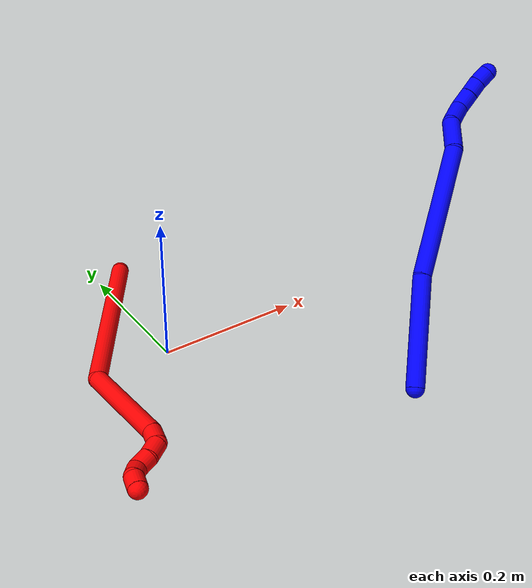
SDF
<sdf version="1.7">
 <world name="default">
  <plugin name="TubeGeneratorPlugin" filename="libtube_generator_plugin.so"/>
  <model name="photoneo_s_sensor">
   <static>1</static>
   <pose>0 0 2 1.57079 1.57079 3.14159</pose>
   <link name="link">
    <inertial><mass>0.1</mass></inertial>
    <sensor name="sensor" type="depth">
     <update_rate>30</update_rate>
     <camera>
      <horizontal_fov>1.22</horizontal_fov>
      <image><width>1920</width><height>1200</height><format>B8G8R8</format></image>
      <clip><near>0.1</near><far>4</far></clip>
      <depth_camera><output>points</output></depth_camera>
     </camera>
     <plugin name="camera_plugin" filename="libgazebo_ros_depth_camera.so">
      <baseline>0.2</baseline>
      <alwaysOn>1</alwaysOn>
      <updateRate>0.0</updateRate>
      <cameraName>camera_ir</cameraName>
      <imageTopicName>/camera/color/image_raw</imageTopicName>
      <cameraInfoTopicName>/camera/color/camera_info</cameraInfoTopicName>
      <depthImageTopicName>/camera/depth/image_raw</depthImageTopicName>
      <depthImageCameraInfoTopicName>/camera/depth/camera_info</depthImageCameraInfoTopicName>
      <pointCloudTopicName>/camera/depth/points</pointCloudTopicName>
      <frameName>fr_optical</frameName>
      <pointCloudCutoff>0.1</pointCloudCutoff>
      <pointCloudCutoffMax>2.0</pointCloudCutoffMax>
      <distortionK1>0</distortionK1>
      <distortionK2>0</distortionK2>
      <distortionK3>0</distortionK3>
      <distortionT1>0</distortionT1>
      <distortionT2>0</distortionT2>
      <CxPrime>0</CxPrime>
      <Cx>0</Cx>
      <Cy>0</Cy>
      <focalLength>0</focalLength>
      <hackBaseline>0</hackBaseline>
     </plugin>
    </sensor>
   </link>
  </model>
  <gravity>0 0 -9.8</gravity>
  <magnetic_field>6e-06 2.3e-05 -4.2e-05</magnetic_field>
  <atmosphere type="adiabatic"/>
  <physics name="default_physics" default="0" type="ode">
   <max_step_size>0.003</max_step_size>
   <real_time_factor>1</real_time_factor>
   <real_time_update_rate>1000</real_time_update_rate>
   <max_contacts>10000</max_contacts>
   <ode>
    <solver>
     <type>quick</type>
     <iters>100</iters>
     <sor>1.3</sor>
     <use_dynamic_moi_rescaling>0</use_dynamic_moi_rescaling>
    </solver>
    <constraints>
     <contact_max_correcting_vel>0</contact_max_correcting_vel>
     <contact_surface_layer>0.001</contact_surface_layer>
     <cfm>0</cfm>
     <erp>0.2</erp>
    </constraints>
   </ode>
  </physics>
  <scene><ambient>0.4 0.4 0.4 1</ambient><background>0.7 0.7 0.7 1</background><shadows>0</shadows></scene>
  <audio><device>default</device></audio>
  <spherical_coordinates>
   <surface_model>EARTH_WGS84</surface_model>
   <latitude_deg>0</latitude_deg>
   <longitude_deg>0</longitude_deg>
   <elevation>0</elevation>
   <heading_deg>0</heading_deg>
  </spherical_coordinates>
  <model name="bin">
   <static>1</static>
   <link name="bottom">
    <collision name="collision-bottom">
     <pose>0 0 -0.01 0 -0 0</pose>
     <geometry><box><size>0.8 0.6 0.02</size></box></geometry>
     <surface>
      <friction><ode><mu>100</mu><mu2>100</mu2></ode></friction>
      <contact><collide_bitmask>65535</collide_bitmask></contact>
     </surface>
    </collision>
   </link>
   <link name="west_wall">
    <collision name="collision-west_wall">
     <pose>-0.41 0 0.1 0 -0 0</pose>
     <geometry><box><size>0.02 0.6 0.2</size></box></geometry>
     <surface>
      <friction><ode><mu>100</mu><mu2>100</mu2></ode></friction>
      <contact><collide_bitmask>65535</collide_bitmask></contact>
     </surface>
    </collision>
   </link>
   <link name="east_wall">
    <collision name="collision-east_wall">
     <pose>0.41 0 0.1 0 -0 0</pose>
     <geometry><box><size>0.02 0.6 0.2</size></box></geometry>
     <surface>
      <friction><ode><mu>100</mu><mu2>100</mu2></ode></friction>
      <contact><collide_bitmask>65535</collide_bitmask></contact>
     </surface>
    </collision>
   </link>
   <link name="south_wall">
    <collision name="collision-south_wall">
     <pose>0 -0.31 0.1 0 -0 0</pose>
     <geometry><box><size>0.8 0.02 0.2</size></box></geometry>
     <surface>
      <friction><ode><mu>100</mu><mu2>100</mu2></ode></friction>
      <contact><collide_bitmask>65535</collide_bitmask></contact>
     </surface>
    </collision>
   </link>
   <link name="north_wall">
    <collision name="collision-north_wall">
     <pose>0 0.31 0.1 0 -0 0</pose>
     <geometry><box><size>0.8 0.02 0.2</size></box></geometry>
     <surface>
      <friction><ode><mu>100</mu><mu2>100</mu2></ode></friction>
      <contact><collide_bitmask>65535</collide_bitmask></contact>
     </surface>
    </collision>
   </link>
  </model>
  <model name="1">
   <static>0</static>
   <link name="1">
    <collision name="collision-cylinder-e_1_1_4">
     <pose>0.013259 -0.004171 0.073242 0.056883 0.178812 0.005101</pose>
     <geometry><cylinder><radius>0.0125</radius><length>0.149098</length></cylinder></geometry>
     <surface>
      <friction><ode><mu>1.16</mu><mu2>1.16</mu2><slip1>0</slip1><slip2>0</slip2></ode></friction>
      <contact><ode><kp>1e+06</kp><kd>1</kd><max_vel>0</max_vel><min_depth>0.001</min_depth></ode></contact>
     </surface>
    </collision>
    <visual name="visual-cylinder-e_1_1_4">
     <pose>0.013259 -0.004171 0.073242 0.056883 0.178812 0.005101</pose>
     <geometry><cylinder><radius>0.0125</radius><length>0.149098</length></cylinder></geometry>
     <material><ambient>0 0 1 1</ambient></material>
    </visual>
    <collision name="collision-cylinder-e_2_4_5">
     <pose>0.042312 0.0056 0.239225 -0.149214 0.166832 -0.012499</pose>
     <geometry><cylinder><radius>0.0125</radius><length>0.190207</length></cylinder></geometry>
     <surface>
      <friction><ode><mu>1.16</mu><mu2>1.16</mu2><slip1>0</slip1><slip2>0</slip2></ode></friction>
      <contact><ode><kp>1e+06</kp><kd>1</kd><max_vel>0</max_vel><min_depth>0.001</min_depth></ode></contact>
     </surface>
    </collision>
    <visual name="visual-cylinder-e_2_4_5">
     <pose>0.042312 0.0056 0.239225 -0.149214 0.166832 -0.012499</pose>
     <geometry><cylinder><radius>0.0125</radius><length>0.190207</length></cylinder></geometry>
     <material><ambient>0 0 1 1</ambient></material>
    </visual>
    <collision name="collision-cylinder-e_3_5_6">
     <pose>0.053681 0.019957 0.35566 -0.017504 -0.184545 0.00162</pose>
     <geometry><cylinder><radius>0.0125</radius><length>0.048215</length></cylinder></geometry>
     <surface>
      <friction><ode><mu>1.16</mu><mu2>1.16</mu2><slip1>0</slip1><slip2>0</slip2></ode></friction>
      <contact><ode><kp>1e+06</kp><kd>1</kd><max_vel>0</max_vel><min_depth>0.001</min_depth></ode></contact>
     </surface>
    </collision>
    <visual name="visual-cylinder-e_3_5_6">
     <pose>0.053681 0.019957 0.35566 -0.017504 -0.184545 0.00162</pose>
     <geometry><cylinder><radius>0.0125</radius><length>0.048215</length></cylinder></geometry>
     <material><ambient>0 0 1 1</ambient></material>
    </visual>
    <collision name="collision-cylinder-e_4_6_7">
     <pose>0.043159 0.030576 0.398004 -0.500671 -0.279332 0.071862</pose>
     <geometry><cylinder><radius>0.0125</radius><length>0.044231</length></cylinder></geometry>
     <surface>
      <friction><ode><mu>1.16</mu><mu2>1.16</mu2><slip1>0</slip1><slip2>0</slip2></ode></friction>
      <contact><ode><kp>1e+06</kp><kd>1</kd><max_vel>0</max_vel><min_depth>0.001</min_depth></ode></contact>
     </surface>
    </collision>
    <visual name="visual-cylinder-e_4_6_7">
     <pose>0.043159 0.030576 0.398004 -0.500671 -0.279332 0.071862</pose>
     <geometry><cylinder><radius>0.0125</radius><length>0.044231</length></cylinder></geometry>
     <material><ambient>0 0 1 1</ambient></material>
    </visual>
    <collision name="collision-cylinder-e_5_7_8">
     <pose>0.042706 0.046084 0.42754 -0.45332 0.436177 -0.102129</pose>
     <geometry><cylinder><radius>0.0125</radius><length>0.026721</length></cylinder></geometry>
     <surface>
      <friction><ode><mu>1.16</mu><mu2>1.16</mu2><slip1>0</slip1><slip2>0</slip2></ode></friction>
      <contact><ode><kp>1e+06</kp><kd>1</kd><max_vel>0</max_vel><min_depth>0.001</min_depth></ode></contact>
     </surface>
    </collision>
    <visual name="visual-cylinder-e_5_7_8">
     <pose>0.042706 0.046084 0.42754 -0.45332 0.436177 -0.102129</pose>
     <geometry><cylinder><radius>0.0125</radius><length>0.026721</length></cylinder></geometry>
     <material><ambient>0 0 1 1</ambient></material>
    </visual>
    <collision name="collision-cylinder-e_6_8_9">
     <pose>0.052342 0.055499 0.446995 -0.447405 0.397555 -0.091594</pose>
     <geometry><cylinder><radius>0.0125</radius><length>0.020616</length></cylinder></geometry>
     <surface>
      <friction><ode><mu>1.16</mu><mu2>1.16</mu2><slip1>0</slip1><slip2>0</slip2></ode></friction>
      <contact><ode><kp>1e+06</kp><kd>1</kd><max_vel>0</max_vel><min_depth>0.001</min_depth></ode></contact>
     </surface>
    </collision>
    <visual name="visual-cylinder-e_6_8_9">
     <pose>0.052342 0.055499 0.446995 -0.447405 0.397555 -0.091594</pose>
     <geometry><cylinder><radius>0.0125</radius><length>0.020616</length></cylinder></geometry>
     <material><ambient>0 0 1 1</ambient></material>
    </visual>
    <collision name="collision-cylinder-e_7_9_2">
     <pose>0.061583 0.064618 0.463092 -0.586907 0.526058 -0.162376</pose>
     <geometry><cylinder><radius>0.0125</radius><length>0.020911</length></cylinder></geometry>
     <surface>
      <friction><ode><mu>1.16</mu><mu2>1.16</mu2><slip1>0</slip1><slip2>0</slip2></ode></friction>
      <contact><ode><kp>1e+06</kp><kd>1</kd><max_vel>0</max_vel><min_depth>0.001</min_depth></ode></contact>
     </surface>
    </collision>
    <visual name="visual-cylinder-e_7_9_2">
     <pose>0.061583 0.064618 0.463092 -0.586907 0.526058 -0.162376</pose>
     <geometry><cylinder><radius>0.0125</radius><length>0.020911</length></cylinder></geometry>
     <material><ambient>0 0 1 1</ambient></material>
    </visual>
    <collision name="collision-sphere-2">
     <pose>0.066833 0.069626 0.470621 0 -0 0</pose>
     <geometry><sphere><radius>0.0125</radius></sphere></geometry>
     <surface>
      <friction><ode><mu>1.16</mu><mu2>1.16</mu2><slip1>0</slip1><slip2>0</slip2></ode></friction>
      <contact><ode><kp>1e+06</kp><kd>1</kd><max_vel>0</max_vel><min_depth>0.001</min_depth></ode></contact>
     </surface>
    </collision>
    <visual name="visual-sphere-2">
     <pose>0.066833 0.069626 0.470621 0 -0 0</pose>
     <geometry><sphere><radius>0.0125</radius></sphere></geometry>
     <material><ambient>0 0 1 1</ambient></material>
    </visual>
    <collision name="collision-sphere-9">
     <pose>0.056333 0.059611 0.455563 0 -0 0</pose>
     <geometry><sphere><radius>0.0125</radius></sphere></geometry>
     <surface>
      <friction><ode><mu>1.16</mu><mu2>1.16</mu2><slip1>0</slip1><slip2>0</slip2></ode></friction>
      <contact><ode><kp>1e+06</kp><kd>1</kd><max_vel>0</max_vel><min_depth>0.001</min_depth></ode></contact>
     </surface>
    </collision>
    <visual name="visual-sphere-9">
     <pose>0.056333 0.059611 0.455563 0 -0 0</pose>
     <geometry><sphere><radius>0.0125</radius></sphere></geometry>
     <material><ambient>0 0 1 1</ambient></material>
    </visual>
    <collision name="collision-sphere-4">
     <pose>0.026519 -0.008341 0.146484 0 -0 0</pose>
     <geometry><sphere><radius>0.0125</radius></sphere></geometry>
     <surface>
      <friction><ode><mu>1.16</mu><mu2>1.16</mu2><slip1>0</slip1><slip2>0</slip2></ode></friction>
      <contact><ode><kp>1e+06</kp><kd>1</kd><max_vel>0</max_vel><min_depth>0.001</min_depth></ode></contact>
     </surface>
    </collision>
    <visual name="visual-sphere-4">
     <pose>0.026519 -0.008341 0.146484 0 -0 0</pose>
     <geometry><sphere><radius>0.0125</radius></sphere></geometry>
     <material><ambient>0 0 1 1</ambient></material>
    </visual>
    <collision name="collision-sphere-1">
     <geometry><sphere><radius>0.0125</radius></sphere></geometry>
     <surface>
      <friction><ode><mu>1.16</mu><mu2>1.16</mu2><slip1>0</slip1><slip2>0</slip2></ode></friction>
      <contact><ode><kp>1e+06</kp><kd>1</kd><max_vel>0</max_vel><min_depth>0.001</min_depth></ode></contact>
     </surface>
    </collision>
    <visual name="visual-sphere-1">
     <geometry><sphere><radius>0.0125</radius></sphere></geometry>
     <material><ambient>0 0 1 1</ambient></material>
    </visual>
    <collision name="collision-sphere-8">
     <pose>0.048351 0.051388 0.438426 0 -0 0</pose>
     <geometry><sphere><radius>0.0125</radius></sphere></geometry>
     <surface>
      <friction><ode><mu>1.16</mu><mu2>1.16</mu2><slip1>0</slip1><slip2>0</slip2></ode></friction>
      <contact><ode><kp>1e+06</kp><kd>1</kd><max_vel>0</max_vel><min_depth>0.001</min_depth></ode></contact>
     </surface>
    </collision>
    <visual name="visual-sphere-8">
     <pose>0.048351 0.051388 0.438426 0 -0 0</pose>
     <geometry><sphere><radius>0.0125</radius></sphere></geometry>
     <material><ambient>0 0 1 1</ambient></material>
    </visual>
    <collision name="collision-sphere-5">
     <pose>0.058104 0.019542 0.331966 0 -0 0</pose>
     <geometry><sphere><radius>0.0125</radius></sphere></geometry>
     <surface>
      <friction><ode><mu>1.16</mu><mu2>1.16</mu2><slip1>0</slip1><slip2>0</slip2></ode></friction>
      <contact><ode><kp>1e+06</kp><kd>1</kd><max_vel>0</max_vel><min_depth>0.001</min_depth></ode></contact>
     </surface>
    </collision>
    <visual name="visual-sphere-5">
     <pose>0.058104 0.019542 0.331966 0 -0 0</pose>
     <geometry><sphere><radius>0.0125</radius></sphere></geometry>
     <material><ambient>0 0 1 1</ambient></material>
    </visual>
    <collision name="collision-sphere-6">
     <pose>0.049257 0.020372 0.379355 0 -0 0</pose>
     <geometry><sphere><radius>0.0125</radius></sphere></geometry>
     <surface>
      <friction><ode><mu>1.16</mu><mu2>1.16</mu2><slip1>0</slip1><slip2>0</slip2></ode></friction>
      <contact><ode><kp>1e+06</kp><kd>1</kd><max_vel>0</max_vel><min_depth>0.001</min_depth></ode></contact>
     </surface>
    </collision>
    <visual name="visual-sphere-6">
     <pose>0.049257 0.020372 0.379355 0 -0 0</pose>
     <geometry><sphere><radius>0.0125</radius></sphere></geometry>
     <material><ambient>0 0 1 1</ambient></material>
    </visual>
    <collision name="collision-sphere-7">
     <pose>0.037062 0.040781 0.416653 0 -0 0</pose>
     <geometry><sphere><radius>0.0125</radius></sphere></geometry>
     <surface>
      <friction><ode><mu>1.16</mu><mu2>1.16</mu2><slip1>0</slip1><slip2>0</slip2></ode></friction>
      <contact><ode><kp>1e+06</kp><kd>1</kd><max_vel>0</max_vel><min_depth>0.001</min_depth></ode></contact>
     </surface>
    </collision>
    <visual name="visual-sphere-7">
     <pose>0.037062 0.040781 0.416653 0 -0 0</pose>
     <geometry><sphere><radius>0.0125</radius></sphere></geometry>
     <material><ambient>0 0 1 1</ambient></material>
    </visual>
    <inertial>
     <pose>0.03606 0.01297 0.242997 0 -0 0</pose>
     <mass>0.5</mass>
     <inertia>
      <ixx>0.000875</ixx>
      <ixy>0</ixy>
      <ixz>0</ixz>
      <iyy>0.00088</iyy>
      <iyz>0</iyz>
      <izz>-0.000184</izz>
     </inertia>
    </inertial>
   </link>
   <pose>0.219428 -0.257764 0.012198 -0.602216 -0.851219 -1.51441</pose>
  </model>
  <model name="2">
   <static>0</static>
   <link name="2">
    <collision name="collision-cylinder-e_1_1_4">
     <pose>-0.011534 -0.035319 0.123756 0.278004 -0.089384 -0.012513</pose>
     <geometry><cylinder><radius>0.0125</radius><length>0.258426</length></cylinder></geometry>
     <surface>
      <friction><ode><mu>1.16</mu><mu2>1.16</mu2><slip1>0</slip1><slip2>0</slip2></ode></friction>
      <contact><ode><kp>1e+06</kp><kd>1</kd><max_vel>0</max_vel><min_depth>0.001</min_depth></ode></contact>
     </surface>
    </collision>
    <visual name="visual-cylinder-e_1_1_4">
     <pose>-0.011534 -0.035319 0.123756 0.278004 -0.089384 -0.012513</pose>
     <geometry><cylinder><radius>0.0125</radius><length>0.258426</length></cylinder></geometry>
     <material><ambient>1 0 0 1</ambient></material>
    </visual>
    <collision name="collision-cylinder-e_2_4_5">
     <pose>-0.012562 -0.121035 0.288809 0.884311 0.159872 0.075811</pose>
     <geometry><cylinder><radius>0.0125</radius><length>0.131994</length></cylinder></geometry>
     <surface>
      <friction><ode><mu>1.16</mu><mu2>1.16</mu2><slip1>0</slip1><slip2>0</slip2></ode></friction>
      <contact><ode><kp>1e+06</kp><kd>1</kd><max_vel>0</max_vel><min_depth>0.001</min_depth></ode></contact>
     </surface>
    </collision>
    <visual name="visual-cylinder-e_2_4_5">
     <pose>-0.012562 -0.121035 0.288809 0.884311 0.159872 0.075811</pose>
     <geometry><cylinder><radius>0.0125</radius><length>0.131994</length></cylinder></geometry>
     <material><ambient>1 0 0 1</ambient></material>
    </visual>
    <collision name="collision-cylinder-e_3_5_6">
     <pose>-0.001136 -0.178033 0.340084 0.584513 0.076731 0.023097</pose>
     <geometry><cylinder><radius>0.0125</radius><length>0.024</length></cylinder></geometry>
     <surface>
      <friction><ode><mu>1.16</mu><mu2>1.16</mu2><slip1>0</slip1><slip2>0</slip2></ode></friction>
      <contact><ode><kp>1e+06</kp><kd>1</kd><max_vel>0</max_vel><min_depth>0.001</min_depth></ode></contact>
     </surface>
    </collision>
    <visual name="visual-cylinder-e_3_5_6">
     <pose>-0.001136 -0.178033 0.340084 0.584513 0.076731 0.023097</pose>
     <geometry><cylinder><radius>0.0125</radius><length>0.024</length></cylinder></geometry>
     <material><ambient>1 0 0 1</ambient></material>
    </visual>
    <collision name="collision-cylinder-e_4_6_7">
     <pose>-0.003152 -0.184126 0.36147 -0.044687 -0.251667 0.005654</pose>
     <geometry><cylinder><radius>0.0125</radius><length>0.023579</length></cylinder></geometry>
     <surface>
      <friction><ode><mu>1.16</mu><mu2>1.16</mu2><slip1>0</slip1><slip2>0</slip2></ode></friction>
      <contact><ode><kp>1e+06</kp><kd>1</kd><max_vel>0</max_vel><min_depth>0.001</min_depth></ode></contact>
     </surface>
    </collision>
    <visual name="visual-cylinder-e_4_6_7">
     <pose>-0.003152 -0.184126 0.36147 -0.044687 -0.251667 0.005654</pose>
     <geometry><cylinder><radius>0.0125</radius><length>0.023579</length></cylinder></geometry>
     <material><ambient>1 0 0 1</ambient></material>
    </visual>
    <collision name="collision-cylinder-e_5_7_8">
     <pose>-0.01023 -0.180825 0.382539 -0.281162 -0.390715 0.055991</pose>
     <geometry><cylinder><radius>0.0125</radius><length>0.021754</length></cylinder></geometry>
     <surface>
      <friction><ode><mu>1.16</mu><mu2>1.16</mu2><slip1>0</slip1><slip2>0</slip2></ode></friction>
      <contact><ode><kp>1e+06</kp><kd>1</kd><max_vel>0</max_vel><min_depth>0.001</min_depth></ode></contact>
     </surface>
    </collision>
    <visual name="visual-cylinder-e_5_7_8">
     <pose>-0.01023 -0.180825 0.382539 -0.281162 -0.390715 0.055991</pose>
     <geometry><cylinder><radius>0.0125</radius><length>0.021754</length></cylinder></geometry>
     <material><ambient>1 0 0 1</ambient></material>
    </visual>
    <collision name="collision-cylinder-e_6_8_9">
     <pose>-0.012906 -0.179097 0.402135 0.10659 0.145781 0.007791</pose>
     <geometry><cylinder><radius>0.0125</radius><length>0.020194</length></cylinder></geometry>
     <surface>
      <friction><ode><mu>1.16</mu><mu2>1.16</mu2><slip1>0</slip1><slip2>0</slip2></ode></friction>
      <contact><ode><kp>1e+06</kp><kd>1</kd><max_vel>0</max_vel><min_depth>0.001</min_depth></ode></contact>
     </surface>
    </collision>
    <visual name="visual-cylinder-e_6_8_9">
     <pose>-0.012906 -0.179097 0.402135 0.10659 0.145781 0.007791</pose>
     <geometry><cylinder><radius>0.0125</radius><length>0.020194</length></cylinder></geometry>
     <material><ambient>1 0 0 1</ambient></material>
    </visual>
    <collision name="collision-cylinder-e_7_9_2">
     <pose>-0.011373 -0.1859 0.420288 0.609648 0.006627 0.002085</pose>
     <geometry><cylinder><radius>0.0125</radius><length>0.020051</length></cylinder></geometry>
     <surface>
      <friction><ode><mu>1.16</mu><mu2>1.16</mu2><slip1>0</slip1><slip2>0</slip2></ode></friction>
      <contact><ode><kp>1e+06</kp><kd>1</kd><max_vel>0</max_vel><min_depth>0.001</min_depth></ode></contact>
     </surface>
    </collision>
    <visual name="visual-cylinder-e_7_9_2">
     <pose>-0.011373 -0.1859 0.420288 0.609648 0.006627 0.002085</pose>
     <geometry><cylinder><radius>0.0125</radius><length>0.020051</length></cylinder></geometry>
     <material><ambient>1 0 0 1</ambient></material>
    </visual>
    <collision name="collision-sphere-2">
     <pose>-0.011306 -0.19164 0.428507 0 -0 0</pose>
     <geometry><sphere><radius>0.0125</radius></sphere></geometry>
     <surface>
      <friction><ode><mu>1.16</mu><mu2>1.16</mu2><slip1>0</slip1><slip2>0</slip2></ode></friction>
      <contact><ode><kp>1e+06</kp><kd>1</kd><max_vel>0</max_vel><min_depth>0.001</min_depth></ode></contact>
     </surface>
    </collision>
    <visual name="visual-sphere-2">
     <pose>-0.011306 -0.19164 0.428507 0 -0 0</pose>
     <geometry><sphere><radius>0.0125</radius></sphere></geometry>
     <material><ambient>1 0 0 1</ambient></material>
    </visual>
    <collision name="collision-sphere-9">
     <pose>-0.011439 -0.18016 0.412068 0 -0 0</pose>
     <geometry><sphere><radius>0.0125</radius></sphere></geometry>
     <surface>
      <friction><ode><mu>1.16</mu><mu2>1.16</mu2><slip1>0</slip1><slip2>0</slip2></ode></friction>
      <contact><ode><kp>1e+06</kp><kd>1</kd><max_vel>0</max_vel><min_depth>0.001</min_depth></ode></contact>
     </surface>
    </collision>
    <visual name="visual-sphere-9">
     <pose>-0.011439 -0.18016 0.412068 0 -0 0</pose>
     <geometry><sphere><radius>0.0125</radius></sphere></geometry>
     <material><ambient>1 0 0 1</ambient></material>
    </visual>
    <collision name="collision-sphere-4">
     <pose>-0.023068 -0.070638 0.247512 0 -0 0</pose>
     <geometry><sphere><radius>0.0125</radius></sphere></geometry>
     <surface>
      <friction><ode><mu>1.16</mu><mu2>1.16</mu2><slip1>0</slip1><slip2>0</slip2></ode></friction>
      <contact><ode><kp>1e+06</kp><kd>1</kd><max_vel>0</max_vel><min_depth>0.001</min_depth></ode></contact>
     </surface>
    </collision>
    <visual name="visual-sphere-4">
     <pose>-0.023068 -0.070638 0.247512 0 -0 0</pose>
     <geometry><sphere><radius>0.0125</radius></sphere></geometry>
     <material><ambient>1 0 0 1</ambient></material>
    </visual>
    <collision name="collision-sphere-1">
     <geometry><sphere><radius>0.0125</radius></sphere></geometry>
     <surface>
      <friction><ode><mu>1.16</mu><mu2>1.16</mu2><slip1>0</slip1><slip2>0</slip2></ode></friction>
      <contact><ode><kp>1e+06</kp><kd>1</kd><max_vel>0</max_vel><min_depth>0.001</min_depth></ode></contact>
     </surface>
    </collision>
    <visual name="visual-sphere-1">
     <geometry><sphere><radius>0.0125</radius></sphere></geometry>
     <material><ambient>1 0 0 1</ambient></material>
    </visual>
    <collision name="collision-sphere-8">
     <pose>-0.014373 -0.178034 0.392202 0 -0 0</pose>
     <geometry><sphere><radius>0.0125</radius></sphere></geometry>
     <surface>
      <friction><ode><mu>1.16</mu><mu2>1.16</mu2><slip1>0</slip1><slip2>0</slip2></ode></friction>
      <contact><ode><kp>1e+06</kp><kd>1</kd><max_vel>0</max_vel><min_depth>0.001</min_depth></ode></contact>
     </surface>
    </collision>
    <visual name="visual-sphere-8">
     <pose>-0.014373 -0.178034 0.392202 0 -0 0</pose>
     <geometry><sphere><radius>0.0125</radius></sphere></geometry>
     <material><ambient>1 0 0 1</ambient></material>
    </visual>
    <collision name="collision-sphere-5">
     <pose>-0.002056 -0.171431 0.330106 0 -0 0</pose>
     <geometry><sphere><radius>0.0125</radius></sphere></geometry>
     <surface>
      <friction><ode><mu>1.16</mu><mu2>1.16</mu2><slip1>0</slip1><slip2>0</slip2></ode></friction>
      <contact><ode><kp>1e+06</kp><kd>1</kd><max_vel>0</max_vel><min_depth>0.001</min_depth></ode></contact>
     </surface>
    </collision>
    <visual name="visual-sphere-5">
     <pose>-0.002056 -0.171431 0.330106 0 -0 0</pose>
     <geometry><sphere><radius>0.0125</radius></sphere></geometry>
     <material><ambient>1 0 0 1</ambient></material>
    </visual>
    <collision name="collision-sphere-6">
     <pose>-0.000216 -0.184636 0.350063 0 -0 0</pose>
     <geometry><sphere><radius>0.0125</radius></sphere></geometry>
     <surface>
      <friction><ode><mu>1.16</mu><mu2>1.16</mu2><slip1>0</slip1><slip2>0</slip2></ode></friction>
      <contact><ode><kp>1e+06</kp><kd>1</kd><max_vel>0</max_vel><min_depth>0.001</min_depth></ode></contact>
     </surface>
    </collision>
    <visual name="visual-sphere-6">
     <pose>-0.000216 -0.184636 0.350063 0 -0 0</pose>
     <geometry><sphere><radius>0.0125</radius></sphere></geometry>
     <material><ambient>1 0 0 1</ambient></material>
    </visual>
    <collision name="collision-sphere-7">
     <pose>-0.006088 -0.183615 0.372876 0 -0 0</pose>
     <geometry><sphere><radius>0.0125</radius></sphere></geometry>
     <surface>
      <friction><ode><mu>1.16</mu><mu2>1.16</mu2><slip1>0</slip1><slip2>0</slip2></ode></friction>
      <contact><ode><kp>1e+06</kp><kd>1</kd><max_vel>0</max_vel><min_depth>0.001</min_depth></ode></contact>
     </surface>
    </collision>
    <visual name="visual-sphere-7">
     <pose>-0.006088 -0.183615 0.372876 0 -0 0</pose>
     <geometry><sphere><radius>0.0125</radius></sphere></geometry>
     <material><ambient>1 0 0 1</ambient></material>
    </visual>
    <inertial>
     <pose>-0.010903 -0.089992 0.223317 0 -0 0</pose>
     <mass>0.5</mass>
     <inertia>
      <ixx>0.001641</ixx>
      <ixy>0</ixy>
      <ixz>0</ixz>
      <iyy>0.001509</iyy>
      <iyz>0</iyz>
      <izz>0.00068</izz>
     </inertia>
    </inertial>
   </link>
   <pose>0.034667 0.201067 0.012179 1.05779 -1.20346 -0.346425</pose>
  </model>
 </world>
</sdf>
